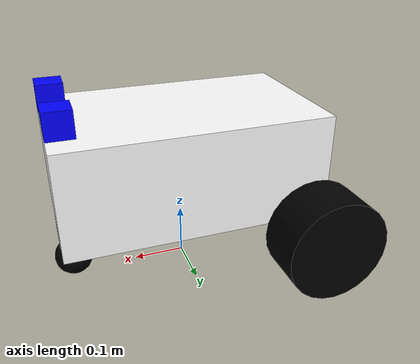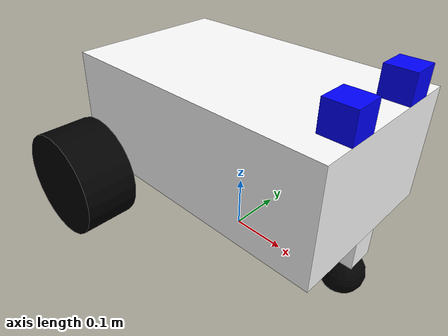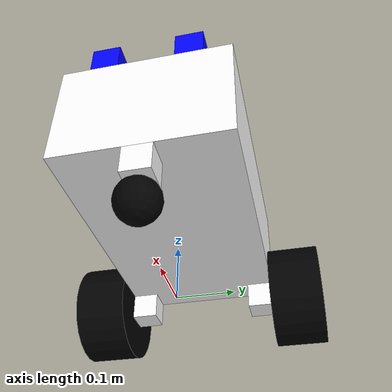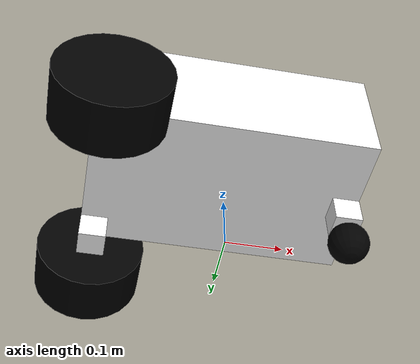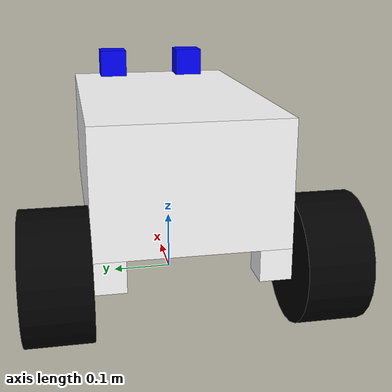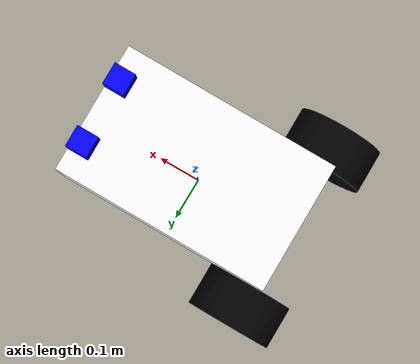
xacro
<?xml version="1.0"?>

<robot xmlns:xacro="http://www.ros.org/wiki/xacro" name="differential_drive_robot">
    <xacro:include filename="properties.xacro"/>
    <xacro:include filename="components.xacro"/>

    <material name="white">
        <color rgba="1 1 1 1"/>
    </material>
    <material name="black">
        <color rgba="0 0 0 1"/>
    </material>
    <material name="blue">
        <color rgba="0 0 1 1"/>
    </material>

    <!-- Dummy Root Link -->
    <link name="base_footprint"/>

    <!-- Base Link -->
    <link name="base_link">
        <visual>
            <geometry>
                <box size="${base_length} ${base_width} ${base_height}"/>
            </geometry>
            <material name="white"/>
        </visual>
        <collision>
            <geometry>
                <box size="${base_length} ${base_width} ${base_height}"/>
            </geometry>
        </collision>
        <inertial>
            <mass value="${base_mass}"/>
            <inertia
                ixx="${base_mass * ((base_width*base_width) + (base_height*base_height)) / 12.0}"
                ixy="0"
                ixz="0"
                iyy="${base_mass * ((base_length*base_length) + (base_height*base_height)) / 12.0}"
                iyz="0"
                izz="${base_mass * ((base_length*base_length) + (base_width*base_width)) / 12.0}"/>
        </inertial>
    </link>

    <joint name="base_footprint_joint" type="fixed">
        <parent link="base_footprint"/>
        <child link="base_link"/>
        <origin xyz="0 0 ${base_link_ground_height}" rpy="0 0 0"/>
    </joint>

    <!-- Wheel Base Links -->
    <xacro:wheel_base_link prefix="right" mass="${wheel_base_mass}"/>
    <xacro:wheel_base_joint parent="base_link" child="right_wheel_base_link" reflect="-1"/>

    <xacro:wheel_base_link prefix="left" mass="${wheel_base_mass}"/>
    <xacro:wheel_base_joint parent="base_link" child="left_wheel_base_link" reflect="1"/>

    <!-- Wheels -->
    <xacro:wheel_link prefix="right" mass="${wheel_mass}"/>
    <xacro:wheel_joint parent="right_wheel_base_link" child="right_wheel_link" reflect="-1"/>

    <xacro:wheel_link prefix="left" mass="${wheel_mass}"/>
    <xacro:wheel_joint parent="left_wheel_base_link" child="left_wheel_link" reflect="1"/>

    <!-- Sensors -->
    <xacro:sensor_link prefix="camera" mass="${sensor_mass}"/>
    <xacro:sensor_joint parent="base_link" child="camera_sensor_link" reflect="-1"/>

    <xacro:sensor_link prefix="laser" mass="${sensor_mass}"/>
    <xacro:sensor_joint parent="base_link" child="laser_sensor_link" reflect="1"/>

    <!-- Caster Wheel -->
    <xacro:wheel_base_link prefix="caster" mass="${wheel_base_mass}"/>
    <joint name="caster_wheel_base_joint" type="fixed">
        <parent link="base_link"/>
        <child link="caster_wheel_base_link"/>
        <origin xyz="${(base_length/2) - (wheel_base_length/2)} 0 -${(base_height/2) + (wheel_base_height/2)}" rpy="0 0 0"/>
    </joint>

    <link name="caster_wheel_link">
        <visual>
            <geometry>
                <sphere radius="${caster_wheel_radius}"/>
            </geometry>
            <material name="black"/>
        </visual>
        <collision>
            <geometry>
                <sphere radius="${caster_wheel_radius}"/>
            </geometry>
        </collision>
        <inertial>
            <mass value="${caster_wheel_mass}"/>
            <inertia
                ixx="${(2.0/5.0) * caster_wheel_mass * caster_wheel_radius * caster_wheel_radius}"
                ixy="0"
                ixz="0"
                iyy="${(2.0/5.0) * caster_wheel_mass * caster_wheel_radius * caster_wheel_radius}"
                iyz="0"
                izz="${(2.0/5.0) * caster_wheel_mass * caster_wheel_radius * caster_wheel_radius}"/>
        </inertial>
    </link>
    <joint name="caster_wheel_joint" type="fixed">
        <parent link="caster_wheel_base_link"/>
        <child link="caster_wheel_link"/>
        <origin xyz="0 0 -${(wheel_base_height/2) +caster_wheel_radius}" rpy="0 0 0"/>
    </joint>

    <!-- Give the caster wheel low friction so it can slide -->
    <gazebo reference="caster_wheel_link">
        <mu1>0.01</mu1>
        <mu2>0.01</mu2>
    </gazebo>
</robot>

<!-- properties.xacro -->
<robot xmlns:xacro="http://www.ros.org/wiki/xacro">
    <!-- Base -->
    <xacro:property name="base_length" value="0.5"/>
    <xacro:property name="base_width" value="0.3"/>
    <xacro:property name="base_height" value="0.2"/>
    <xacro:property name="base_mass" value="4.0"/>

    <!-- Wheel Mounts -->
    <xacro:property name="wheel_base_length" value="0.05"/>
    <xacro:property name="wheel_base_width" value="0.05"/>
    <xacro:property name="wheel_base_height" value="0.05"/>
    <xacro:property name="wheel_base_mass" value="0.1"/>

    <!-- Wheels -->
    <xacro:property name="wheel_radius" value="0.1"/>
    <xacro:property name="wheel_length" value="0.1"/>
    <xacro:property name="wheel_mass" value="0.5"/>
    <xacro:property name="wheel_roll" value="${pi/2}"/>

    <!-- Sensors -->
    <xacro:property name="sensor_length" value="0.05"/>
    <xacro:property name="sensor_width" value="0.05"/>
    <xacro:property name="sensor_height" value="0.05"/>
    <xacro:property name="sensor_mass" value="0.15"/>

    <!-- Caster Wheel Radius -->
    <xacro:property name="caster_wheel_radius" value="${(wheel_radius - (wheel_base_height/2))/2}"/>
    <xacro:property name="caster_wheel_mass" value="0.1"/>

    <!-- Height of base_link origin above the ground -->
    <xacro:property name="base_link_ground_height" value="${(base_height/2) + (wheel_base_height/2) + wheel_radius}"/>
</robot>

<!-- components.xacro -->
<robot xmlns:xacro="http://www.ros.org/wiki/xacro">
    <!-- Wheel base link -->
    <xacro:macro name="wheel_base_link" params="prefix mass">
        <link name="${prefix}_wheel_base_link">
            <visual>
                <geometry>
                    <box size="${wheel_base_length} ${wheel_base_width} ${wheel_base_height}"/>
                </geometry>
                <material name="white"/>
            </visual>
            <collision>
                <geometry>
                    <box size="${wheel_base_length} ${wheel_base_width} ${wheel_base_height}"/>
                </geometry>
            </collision>
            <inertial>
                <mass value="${mass}"/>
                <inertia
                    ixx="${mass * ((wheel_base_width*wheel_base_width) + (wheel_base_height*wheel_base_height)) / 12.0}"
                    ixy="0"
                    ixz="0"
                    iyy="${mass * ((wheel_base_length*wheel_base_length) + (wheel_base_height*wheel_base_height)) / 12.0}"
                    iyz="0"
                    izz="${mass * ((wheel_base_length*wheel_base_length) + (wheel_base_width*wheel_base_width)) / 12.0}"/>
            </inertial>
        </link>
    </xacro:macro>

    <!-- Wheel base joint -->
    <xacro:macro name="wheel_base_joint" params="parent child reflect">
        <joint name="${child}_joint" type="fixed">
            <parent link="${parent}"/>
            <child link="${child}"/>
            <origin xyz="-${(base_length/2) - (wheel_base_length/2)} ${reflect*((base_width/2) - (wheel_base_width/2))} -${(base_height/2) + (wheel_base_height/2)}" rpy="0 0 0"/>
        </joint>
    </xacro:macro>

    <!-- Wheel link -->
    <xacro:macro name="wheel_link" params="prefix mass">
        <link name="${prefix}_wheel_link">
            <visual>
                <origin rpy="${wheel_roll} 0 0" xyz="0 0 0"/>
                <geometry>
                    <cylinder radius="${wheel_radius}" length="${wheel_length}"/>
                </geometry>
                <material name="black"/>
            </visual>
            <collision>
                <origin rpy="${wheel_roll} 0 0" xyz="0 0 0"/>
                <geometry>
                    <cylinder radius="${wheel_radius}" length="${wheel_length}"/>
                </geometry>
            </collision>
            <inertial>
                <mass value="${mass}"/>
                <inertia
                    ixx="${mass * ((3*wheel_radius*wheel_radius) + (wheel_length*wheel_length)) / 12.0}"
                    ixy="0"
                    ixz="0"
                    iyy="${mass * (wheel_radius*wheel_radius / 2.0)}"
                    iyz="0"
                    izz="${mass * ((3*wheel_radius*wheel_radius) + (wheel_length*wheel_length)) / 12.0}"/>
            </inertial>
        </link>
    </xacro:macro>

    <!-- Wheel joint -->
    <xacro:macro name="wheel_joint" params="parent child reflect">
        <joint name="${child}_joint" type="continuous">
            <parent link="${parent}"/>
            <child link="${child}"/>
            <axis xyz="0 1 0"/>
            <origin xyz="0 ${reflect * ((wheel_base_width/2) + (wheel_length/2))} 0" rpy="0 0 0"/>
        </joint>
    </xacro:macro>

    <!-- Sensors -->
    <xacro:macro name="sensor_link" params="prefix mass">
        <link name="${prefix}_sensor_link">
            <visual>
                <geometry>
                    <box size="${sensor_length} ${sensor_width} ${sensor_height}"/>
                </geometry>
                <material name="blue"/>
            </visual>
            <collision>
                <origin xyz="0 0 ${sensor_height/4}"/>
                <geometry>
                    <box size="${sensor_length + (sensor_length/2)} ${sensor_width + (sensor_width/2)} ${sensor_height + (sensor_height/2)}"/>
                </geometry>
            </collision>
            <inertial>
                <mass value="${mass}"/>
                <inertia
                    ixx="${mass * ((sensor_width*sensor_width) + (sensor_height*sensor_height)) / 12.0}"
                    ixy="0"
                    ixz="0"
                    iyy="${mass * ((sensor_length*sensor_length + sensor_height*sensor_height)) / 12.0}"
                    iyz="0"
                    izz="${mass * ((sensor_length*sensor_length) + (sensor_width*sensor_width)) / 12.0}"/>
            </inertial>
        </link>
    </xacro:macro>

    <!-- Sensor Joints -->
    <xacro:macro name="sensor_joint" params="parent child reflect">
        <joint name="${child}_joint" type="fixed">
            <parent link="${parent}"/>
            <child link="${child}"/>
            <origin xyz="${(base_length/2) - (sensor_length/2)} ${reflect * (base_width/4)} ${(base_height/2) + (sensor_height/2)}" rpy="0 0 0"/>
        </joint>
    </xacro:macro>
</robot>
